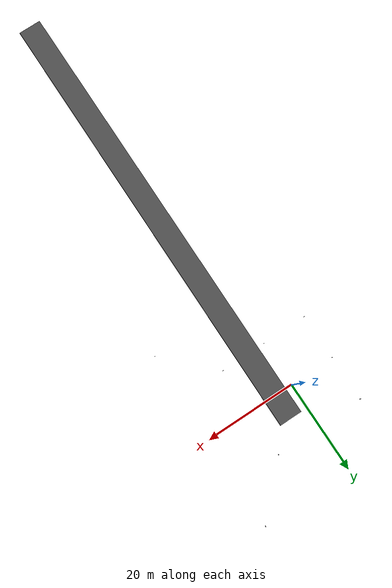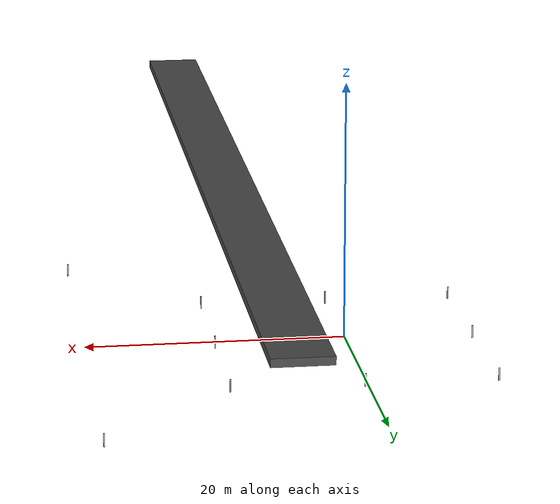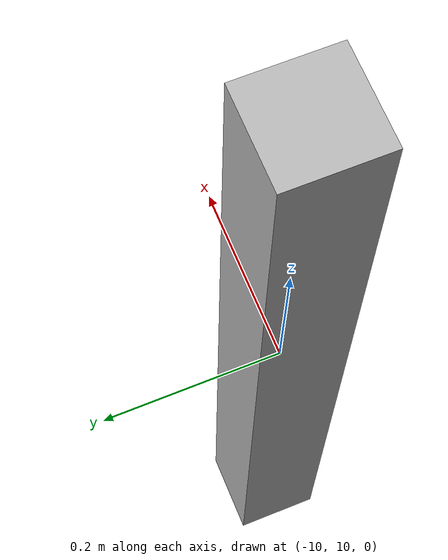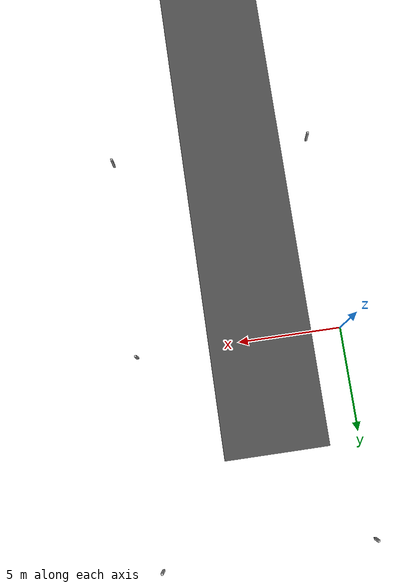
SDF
<sdf version="1.6">
 <world name="default">
  <light name="sun" type="directional">
   <pose>0 0 10 0 -0 0</pose>
   <diffuse>0.8 0.8 0.8 1</diffuse>
   <specular>0.2 0.2 0.2 1</specular>
   <attenuation>
    <range>1000</range>
    <constant>0.9</constant>
    <linear>0.01</linear>
    <quadratic>0.001</quadratic>
   </attenuation>
   <direction>-0.5 0.1 -0.9</direction>
  </light>
  <gravity>0 0 -9.8</gravity>
  <magnetic_field>6e-06 2.3e-05 -4.2e-05</magnetic_field>
  <atmosphere type="adiabatic"/>
  <physics name="default_physics" default="0" type="ode">
   <max_step_size>0.001</max_step_size>
   <real_time_factor>1</real_time_factor>
   <real_time_update_rate>1000</real_time_update_rate>
  </physics>
  <scene><ambient>0.4 0.4 0.4 1</ambient><background>0.7 0.7 0.7 1</background><shadows>1</shadows></scene>
  <spherical_coordinates>
   <surface_model>EARTH_WGS84</surface_model>
   <latitude_deg>0</latitude_deg>
   <longitude_deg>0</longitude_deg>
   <elevation>0</elevation>
   <heading_deg>0</heading_deg>
  </spherical_coordinates>
  <model name="driveway">
   <link name="link">
    <inertial>
     <mass>1</mass>
     <inertia><ixx>1</ixx><ixy>0</ixy><ixz>0</ixz><iyy>1</iyy><iyz>0</iyz><izz>1</izz></inertia>
    </inertial>
    <visual name="visual">
     <cast_shadows>0</cast_shadows>
     <geometry><box><size>5 100 0.7</size></box></geometry>
     <material>
      <script>
       <uri>model://asphalt_plane/materials/scripts</uri>
       <uri>model://asphalt_plane/materials/textures</uri>
       <name>vrc/asphalt</name>
      </script>
      <ambient>0.5 0.5 0.5 1</ambient>
      <diffuse>0.5 0.5 0.5 1</diffuse>
      <specular>0.2 0.2 0.2 1</specular>
      <emissive>0 0 0 1</emissive>
      <shader type="vertex"><normal_map>__default__</normal_map></shader>
     </material>
    </visual>
    <collision name="collision">
     <geometry><box><size>20 20 0.1</size></box></geometry>
     <surface>
      <friction>
       <ode><mu>1</mu><mu2>1</mu2><fdir1>0 0 0</fdir1><slip1>0</slip1><slip2>0</slip2></ode>
       <torsional>
        <coefficient>1</coefficient>
        <patch_radius>0</patch_radius>
        <surface_radius>0</surface_radius>
        <use_patch_radius>1</use_patch_radius>
        <ode><slip>0</slip></ode>
       </torsional>
      </friction>
      <bounce><restitution_coefficient>0</restitution_coefficient><threshold>1e+06</threshold></bounce>
      <contact>
       <collide_without_contact>0</collide_without_contact>
       <collide_without_contact_bitmask>1</collide_without_contact_bitmask>
       <collide_bitmask>1</collide_bitmask>
       <ode>
        <soft_cfm>0</soft_cfm>
        <soft_erp>0.2</soft_erp>
        <kp>1e+13</kp>
        <kd>1</kd>
        <max_vel>0.01</max_vel>
        <min_depth>0</min_depth>
       </ode>
       <bullet>
        <split_impulse>1</split_impulse>
        <split_impulse_penetration_threshold>-0.01</split_impulse_penetration_threshold>
        <soft_cfm>0</soft_cfm>
        <soft_erp>0.2</soft_erp>
        <kp>1e+13</kp>
        <kd>1</kd>
       </bullet>
      </contact>
     </surface>
    </collision>
   </link>
   <static>1</static>
   <pose>3.97383 -44.5323 -0.001337 0 -0 0</pose>
  </model>
  <model name="rf tag home">
   <static>1</static>
   <link name="RFhome">
    <pose>20 -20 0 0 0 0</pose>
    <collision name="box_collision"><geometry><box><size>0.1 0.1 1</size></box></geometry></collision>
    <visual name="visual"><geometry><box><size>0.1 0.1 1</size></box></geometry></visual>
   </link>
  </model>
  <model name="rf tag corner">
   <static>1</static>
   <link name="RFcorner">
    <pose>20 20 0 0 0 0</pose>
    <collision name="box_collision"><geometry><box><size>0.1 0.1 1</size></box></geometry></collision>
    <visual name="visual"><geometry><box><size>0.1 0.1 1</size></box></geometry></visual>
   </link>
  </model>
  <model name="rf tag corner house 0">
   <static>1</static>
   <link name="RFhome">
    <pose>10 -10 0 0 0 0</pose>
    <collision name="box_collision"><geometry><box><size>0.1 0.1 1</size></box></geometry></collision>
    <visual name="visual"><geometry><box><size>0.1 0.1 1</size></box></geometry></visual>
   </link>
  </model>
  <model name="rf tag corner house 1">
   <static>1</static>
   <link name="RFcorner">
    <pose>10 10 0 0 0 0</pose>
    <collision name="box_collision"><geometry><box><size>0.1 0.1 1</size></box></geometry></collision>
    <visual name="visual"><geometry><box><size>0.1 0.1 1</size></box></geometry></visual>
   </link>
  </model>
  <model name="rf tag corner house 2">
   <static>1</static>
   <link name="RFhome">
    <pose>-10 -10 0 0 0 0</pose>
    <collision name="box_collision"><geometry><box><size>0.1 0.1 1</size></box></geometry></collision>
    <visual name="visual"><geometry><box><size>0.1 0.1 1</size></box></geometry></visual>
   </link>
  </model>
  <model name="rf tag corner house 3">
   <static>1</static>
   <link name="RFcorner">
    <pose>-10 10 0 0 0 0</pose>
    <collision name="box_collision"><geometry><box><size>0.1 0.1 1</size></box></geometry></collision>
    <visual name="visual"><geometry><box><size>0.1 0.1 1</size></box></geometry></visual>
   </link>
  </model>
  <model name="rf tag side house 0">
   <static>1</static>
   <link name="RFhome">
    <pose>0 -10 0 0 0 0</pose>
    <collision name="box_collision"><geometry><box><size>0.1 0.1 1</size></box></geometry></collision>
    <visual name="visual"><geometry><box><size>0.1 0.1 1</size></box></geometry></visual>
   </link>
  </model>
  <model name="rf tag side house 1">
   <static>1</static>
   <link name="RFcorner">
    <pose>0 10 0 0 0 0</pose>
    <collision name="box_collision"><geometry><box><size>0.1 0.1 1</size></box></geometry></collision>
    <visual name="visual"><geometry><box><size>0.1 0.1 1</size></box></geometry></visual>
   </link>
  </model>
  <model name="rf tag side house 2">
   <static>1</static>
   <link name="RFhome">
    <pose>-10 0 0 0 0 0</pose>
    <collision name="box_collision"><geometry><box><size>0.1 0.1 1</size></box></geometry></collision>
    <visual name="visual"><geometry><box><size>0.1 0.1 1</size></box></geometry></visual>
   </link>
  </model>
  <model name="rf tag side house 3">
   <static>1</static>
   <link name="RFcorner">
    <pose>10 0 0 0 0 0</pose>
    <collision name="box_collision"><geometry><box><size>0.1 0.1 1</size></box></geometry></collision>
    <visual name="visual"><geometry><box><size>0.1 0.1 1</size></box></geometry></visual>
   </link>
  </model>
 </world>
</sdf>
